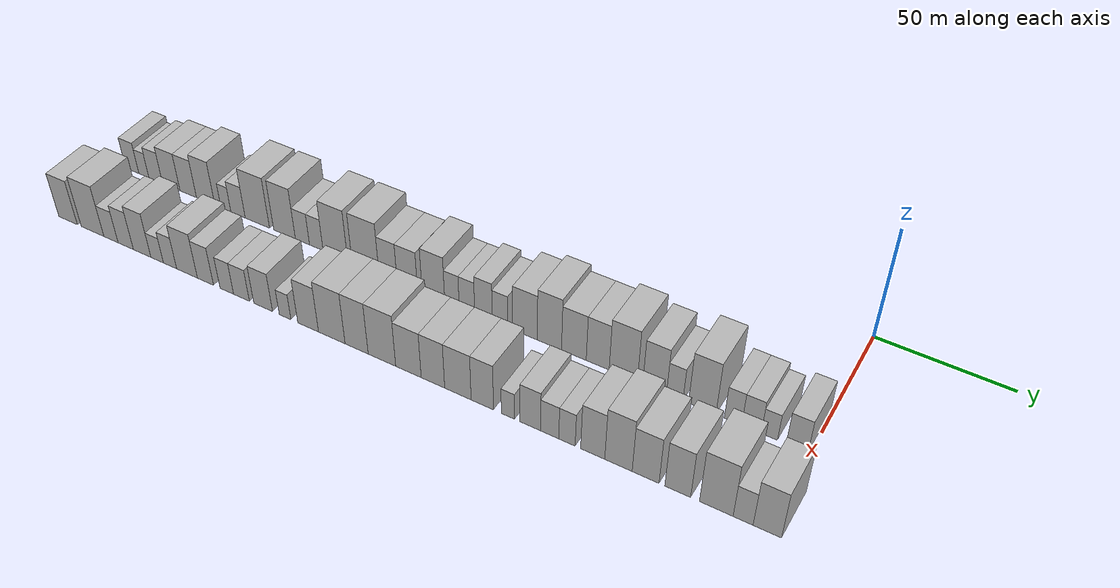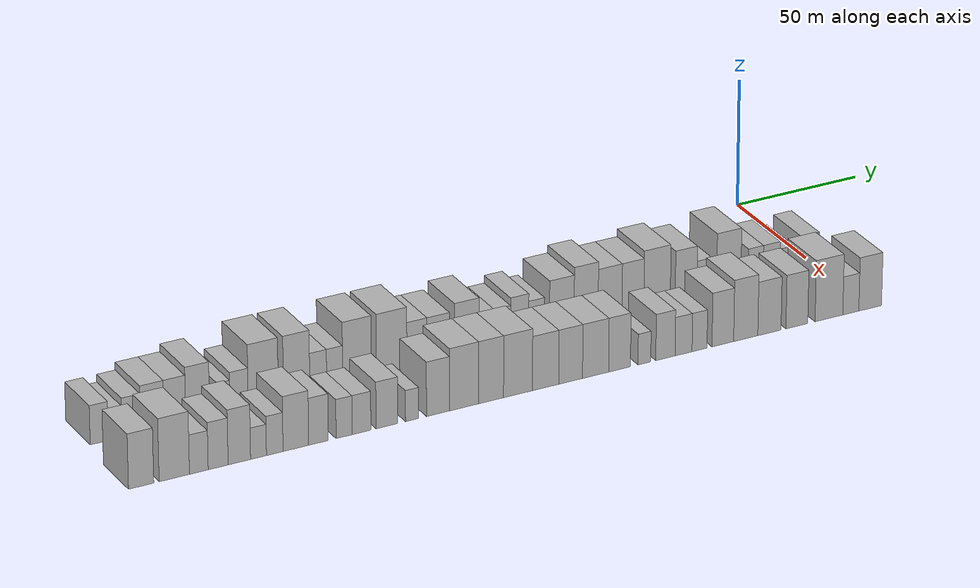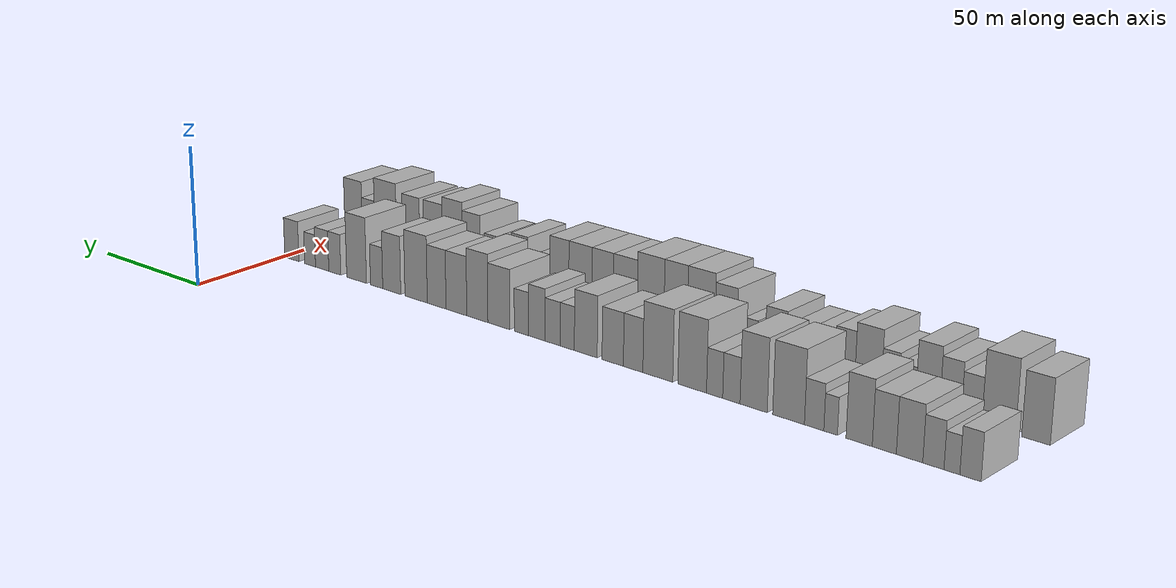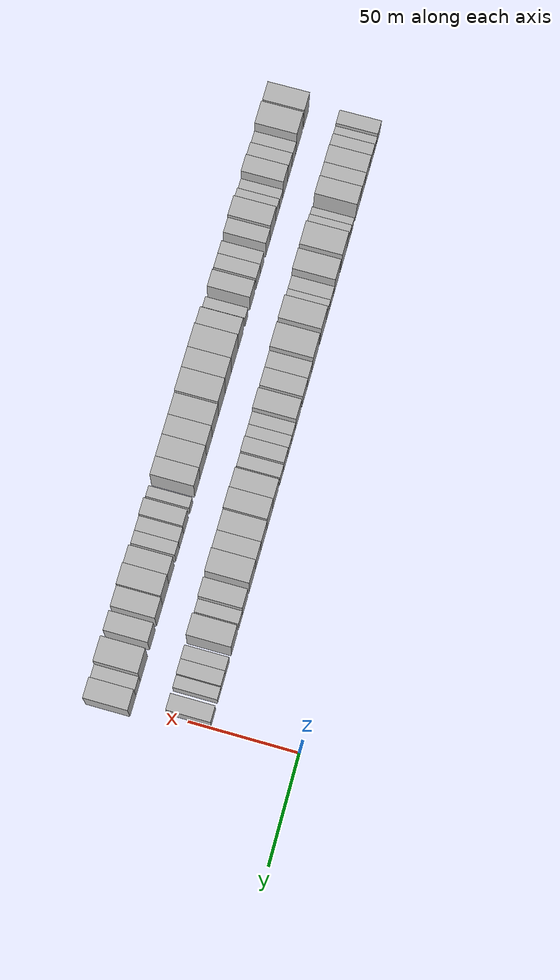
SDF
<sdf version="1.6">
 <world name="default">
  <model name="building_1">
   <static>1</static>
   <pose>50.0000 -284.5812 0 0.000000 0.000000 0.000000</pose>
   <link name="link">
    <pose>0 0 7.50 0 0 0</pose>
    <collision name="collision"><geometry><box><size>20.0000 6.8375 15.0000</size></box></geometry></collision>
    <visual name="visual">
     <cast_shadows>0</cast_shadows>
     <geometry><box><size>20.0000 6.8375 15.0000</size></box></geometry>
     <material>
      <script>
       <uri>model://HANNAS_wall/materials/scripts</uri>
       <uri>model://HANNAS_wall/materials/textures</uri>
       <name>vrc/HANNAS_wall</name>
      </script>
     </material>
    </visual>
   </link>
  </model>
  <model name="building_2">
   <static>1</static>
   <pose>50.0000 -278.5755 0 0.000000 0.000000 0.000000</pose>
   <link name="link">
    <pose>0 0 6.00 0 0 0</pose>
    <collision name="collision"><geometry><box><size>20.0000 5.1739 12.0000</size></box></geometry></collision>
    <visual name="visual">
     <cast_shadows>0</cast_shadows>
     <geometry><box><size>20.0000 5.1739 12.0000</size></box></geometry>
     <material>
      <script>
       <uri>model://HANNAS_wall/materials/scripts</uri>
       <uri>model://HANNAS_wall/materials/textures</uri>
       <name>vrc/HANNAS_wall</name>
      </script>
     </material>
    </visual>
   </link>
  </model>
  <model name="building_3">
   <static>1</static>
   <pose>50.0000 -272.4945 0 0.000000 0.000000 0.000000</pose>
   <link name="link">
    <pose>0 0 7.50 0 0 0</pose>
    <collision name="collision"><geometry><box><size>20.0000 6.9881 15.0000</size></box></geometry></collision>
    <visual name="visual">
     <cast_shadows>0</cast_shadows>
     <geometry><box><size>20.0000 6.9881 15.0000</size></box></geometry>
     <material>
      <script>
       <uri>model://HANNAS_wall/materials/scripts</uri>
       <uri>model://HANNAS_wall/materials/textures</uri>
       <name>vrc/HANNAS_wall</name>
      </script>
     </material>
    </visual>
   </link>
  </model>
  <model name="building_4">
   <static>1</static>
   <pose>50.0000 -264.5793 0 0.000000 0.000000 0.000000</pose>
   <link name="link">
    <pose>0 0 9.00 0 0 0</pose>
    <collision name="collision"><geometry><box><size>20.0000 8.8423 18.0000</size></box></geometry></collision>
    <visual name="visual">
     <cast_shadows>0</cast_shadows>
     <geometry><box><size>20.0000 8.8423 18.0000</size></box></geometry>
     <material>
      <script>
       <uri>model://HANNAS_wall/materials/scripts</uri>
       <uri>model://HANNAS_wall/materials/textures</uri>
       <name>vrc/HANNAS_wall</name>
      </script>
     </material>
    </visual>
   </link>
  </model>
  <model name="building_5">
   <static>1</static>
   <pose>50.0000 -256.0554 0 0.000000 0.000000 0.000000</pose>
   <link name="link">
    <pose>0 0 9.00 0 0 0</pose>
    <collision name="collision"><geometry><box><size>20.0000 8.2054 18.0000</size></box></geometry></collision>
    <visual name="visual">
     <cast_shadows>0</cast_shadows>
     <geometry><box><size>20.0000 8.2054 18.0000</size></box></geometry>
     <material>
      <script>
       <uri>model://HANNAS_wall/materials/scripts</uri>
       <uri>model://HANNAS_wall/materials/textures</uri>
       <name>vrc/HANNAS_wall</name>
      </script>
     </material>
    </visual>
   </link>
  </model>
  <model name="building_6">
   <static>1</static>
   <pose>50.0000 -247.4107 0 0.000000 0.000000 0.000000</pose>
   <link name="link">
    <pose>0 0 10.50 0 0 0</pose>
    <collision name="collision"><geometry><box><size>20.0000 9.0841 21.0000</size></box></geometry></collision>
    <visual name="visual">
     <cast_shadows>0</cast_shadows>
     <geometry><box><size>20.0000 9.0841 21.0000</size></box></geometry>
     <material>
      <script>
       <uri>model://HANNAS_wall/materials/scripts</uri>
       <uri>model://HANNAS_wall/materials/textures</uri>
       <name>vrc/HANNAS_wall</name>
      </script>
     </material>
    </visual>
   </link>
  </model>
  <model name="building_7">
   <static>1</static>
   <pose>50.0000 -237.4643 0 0.000000 0.000000 0.000000</pose>
   <link name="link">
    <pose>0 0 6.00 0 0 0</pose>
    <collision name="collision"><geometry><box><size>20.0000 4.8087 12.0000</size></box></geometry></collision>
    <visual name="visual">
     <cast_shadows>0</cast_shadows>
     <geometry><box><size>20.0000 4.8087 12.0000</size></box></geometry>
     <material>
      <script>
       <uri>model://HANNAS_wall/materials/scripts</uri>
       <uri>model://HANNAS_wall/materials/textures</uri>
       <name>vrc/HANNAS_wall</name>
      </script>
     </material>
    </visual>
   </link>
  </model>
  <model name="building_8">
   <static>1</static>
   <pose>50.0000 -231.5951 0 0.000000 0.000000 0.000000</pose>
   <link name="link">
    <pose>0 0 7.50 0 0 0</pose>
    <collision name="collision"><geometry><box><size>20.0000 6.9297 15.0000</size></box></geometry></collision>
    <visual name="visual">
     <cast_shadows>0</cast_shadows>
     <geometry><box><size>20.0000 6.9297 15.0000</size></box></geometry>
     <material>
      <script>
       <uri>model://HANNAS_wall/materials/scripts</uri>
       <uri>model://HANNAS_wall/materials/textures</uri>
       <name>vrc/HANNAS_wall</name>
      </script>
     </material>
    </visual>
   </link>
  </model>
  <model name="building_9">
   <static>1</static>
   <pose>50.0000 -222.3538 0 0.000000 0.000000 0.000000</pose>
   <link name="link">
    <pose>0 0 12.00 0 0 0</pose>
    <collision name="collision"><geometry><box><size>20.0000 11.5530 24.0000</size></box></geometry></collision>
    <visual name="visual">
     <cast_shadows>0</cast_shadows>
     <geometry><box><size>20.0000 11.5530 24.0000</size></box></geometry>
     <material>
      <script>
       <uri>model://HANNAS_wall/materials/scripts</uri>
       <uri>model://HANNAS_wall/materials/textures</uri>
       <name>vrc/HANNAS_wall</name>
      </script>
     </material>
    </visual>
   </link>
  </model>
  <model name="building_10">
   <static>1</static>
   <pose>50.0000 -209.5118 0 0.000000 0.000000 0.000000</pose>
   <link name="link">
    <pose>0 0 12.00 0 0 0</pose>
    <collision name="collision"><geometry><box><size>20.0000 10.1310 24.0000</size></box></geometry></collision>
    <visual name="visual">
     <cast_shadows>0</cast_shadows>
     <geometry><box><size>20.0000 10.1310 24.0000</size></box></geometry>
     <material>
      <script>
       <uri>model://HANNAS_wall/materials/scripts</uri>
       <uri>model://HANNAS_wall/materials/textures</uri>
       <name>vrc/HANNAS_wall</name>
      </script>
     </material>
    </visual>
   </link>
  </model>
  <model name="building_11">
   <static>1</static>
   <pose>50.0000 -201.1708 0 0.000000 0.000000 0.000000</pose>
   <link name="link">
    <pose>0 0 7.50 0 0 0</pose>
    <collision name="collision"><geometry><box><size>20.0000 6.5511 15.0000</size></box></geometry></collision>
    <visual name="visual">
     <cast_shadows>0</cast_shadows>
     <geometry><box><size>20.0000 6.5511 15.0000</size></box></geometry>
     <material>
      <script>
       <uri>model://HANNAS_wall/materials/scripts</uri>
       <uri>model://HANNAS_wall/materials/textures</uri>
       <name>vrc/HANNAS_wall</name>
      </script>
     </material>
    </visual>
   </link>
  </model>
  <model name="building_12">
   <static>1</static>
   <pose>50.0000 -194.7943 0 0.000000 0.000000 0.000000</pose>
   <link name="link">
    <pose>0 0 7.50 0 0 0</pose>
    <collision name="collision"><geometry><box><size>20.0000 6.2018 15.0000</size></box></geometry></collision>
    <visual name="visual">
     <cast_shadows>0</cast_shadows>
     <geometry><box><size>20.0000 6.2018 15.0000</size></box></geometry>
     <material>
      <script>
       <uri>model://HANNAS_wall/materials/scripts</uri>
       <uri>model://HANNAS_wall/materials/textures</uri>
       <name>vrc/HANNAS_wall</name>
      </script>
     </material>
    </visual>
   </link>
  </model>
  <model name="building_13">
   <static>1</static>
   <pose>50.0000 -186.1245 0 0.000000 0.000000 0.000000</pose>
   <link name="link">
    <pose>0 0 12.00 0 0 0</pose>
    <collision name="collision"><geometry><box><size>20.0000 11.1378 24.0000</size></box></geometry></collision>
    <visual name="visual">
     <cast_shadows>0</cast_shadows>
     <geometry><box><size>20.0000 11.1378 24.0000</size></box></geometry>
     <material>
      <script>
       <uri>model://HANNAS_wall/materials/scripts</uri>
       <uri>model://HANNAS_wall/materials/textures</uri>
       <name>vrc/HANNAS_wall</name>
      </script>
     </material>
    </visual>
   </link>
  </model>
  <model name="building_14">
   <static>1</static>
   <pose>50.0000 -172.6004 0 0.000000 0.000000 0.000000</pose>
   <link name="link">
    <pose>0 0 12.00 0 0 0</pose>
    <collision name="collision"><geometry><box><size>20.0000 11.9105 24.0000</size></box></geometry></collision>
    <visual name="visual">
     <cast_shadows>0</cast_shadows>
     <geometry><box><size>20.0000 11.9105 24.0000</size></box></geometry>
     <material>
      <script>
       <uri>model://HANNAS_wall/materials/scripts</uri>
       <uri>model://HANNAS_wall/materials/textures</uri>
       <name>vrc/HANNAS_wall</name>
      </script>
     </material>
    </visual>
   </link>
  </model>
  <model name="building_15">
   <static>1</static>
   <pose>50.0000 -162.6880 0 0.000000 0.000000 0.000000</pose>
   <link name="link">
    <pose>0 0 9.00 0 0 0</pose>
    <collision name="collision"><geometry><box><size>20.0000 7.9143 18.0000</size></box></geometry></collision>
    <visual name="visual">
     <cast_shadows>0</cast_shadows>
     <geometry><box><size>20.0000 7.9143 18.0000</size></box></geometry>
     <material>
      <script>
       <uri>model://HANNAS_wall/materials/scripts</uri>
       <uri>model://HANNAS_wall/materials/textures</uri>
       <name>vrc/HANNAS_wall</name>
      </script>
     </material>
    </visual>
   </link>
  </model>
  <model name="building_16">
   <static>1</static>
   <pose>50.0000 -154.3279 0 0.000000 0.000000 0.000000</pose>
   <link name="link">
    <pose>0 0 9.00 0 0 0</pose>
    <collision name="collision"><geometry><box><size>20.0000 8.8059 18.0000</size></box></geometry></collision>
    <visual name="visual">
     <cast_shadows>0</cast_shadows>
     <geometry><box><size>20.0000 8.8059 18.0000</size></box></geometry>
     <material>
      <script>
       <uri>model://HANNAS_wall/materials/scripts</uri>
       <uri>model://HANNAS_wall/materials/textures</uri>
       <name>vrc/HANNAS_wall</name>
      </script>
     </material>
    </visual>
   </link>
  </model>
  <model name="building_17">
   <static>1</static>
   <pose>50.0000 -143.1177 0 0.000000 0.000000 0.000000</pose>
   <link name="link">
    <pose>0 0 10.50 0 0 0</pose>
    <collision name="collision"><geometry><box><size>20.0000 9.6144 21.0000</size></box></geometry></collision>
    <visual name="visual">
     <cast_shadows>0</cast_shadows>
     <geometry><box><size>20.0000 9.6144 21.0000</size></box></geometry>
     <material>
      <script>
       <uri>model://HANNAS_wall/materials/scripts</uri>
       <uri>model://HANNAS_wall/materials/textures</uri>
       <name>vrc/HANNAS_wall</name>
      </script>
     </material>
    </visual>
   </link>
  </model>
  <model name="building_18">
   <static>1</static>
   <pose>50.0000 -135.2743 0 0.000000 0.000000 0.000000</pose>
   <link name="link">
    <pose>0 0 7.50 0 0 0</pose>
    <collision name="collision"><geometry><box><size>20.0000 6.0724 15.0000</size></box></geometry></collision>
    <visual name="visual">
     <cast_shadows>0</cast_shadows>
     <geometry><box><size>20.0000 6.0724 15.0000</size></box></geometry>
     <material>
      <script>
       <uri>model://HANNAS_wall/materials/scripts</uri>
       <uri>model://HANNAS_wall/materials/textures</uri>
       <name>vrc/HANNAS_wall</name>
      </script>
     </material>
    </visual>
   </link>
  </model>
  <model name="building_19">
   <static>1</static>
   <pose>50.0000 -129.0100 0 0.000000 0.000000 0.000000</pose>
   <link name="link">
    <pose>0 0 7.50 0 0 0</pose>
    <collision name="collision"><geometry><box><size>20.0000 6.4562 15.0000</size></box></geometry></collision>
    <visual name="visual">
     <cast_shadows>0</cast_shadows>
     <geometry><box><size>20.0000 6.4562 15.0000</size></box></geometry>
     <material>
      <script>
       <uri>model://HANNAS_wall/materials/scripts</uri>
       <uri>model://HANNAS_wall/materials/textures</uri>
       <name>vrc/HANNAS_wall</name>
      </script>
     </material>
    </visual>
   </link>
  </model>
  <model name="building_20">
   <static>1</static>
   <pose>50.0000 -122.1704 0 0.000000 0.000000 0.000000</pose>
   <link name="link">
    <pose>0 0 9.00 0 0 0</pose>
    <collision name="collision"><geometry><box><size>20.0000 7.2230 18.0000</size></box></geometry></collision>
    <visual name="visual">
     <cast_shadows>0</cast_shadows>
     <geometry><box><size>20.0000 7.2230 18.0000</size></box></geometry>
     <material>
      <script>
       <uri>model://HANNAS_wall/materials/scripts</uri>
       <uri>model://HANNAS_wall/materials/textures</uri>
       <name>vrc/HANNAS_wall</name>
      </script>
     </material>
    </visual>
   </link>
  </model>
  <model name="building_21">
   <static>1</static>
   <pose>50.0000 -115.4104 0 0.000000 0.000000 0.000000</pose>
   <link name="link">
    <pose>0 0 7.50 0 0 0</pose>
    <collision name="collision"><geometry><box><size>20.0000 6.2971 15.0000</size></box></geometry></collision>
    <visual name="visual">
     <cast_shadows>0</cast_shadows>
     <geometry><box><size>20.0000 6.2971 15.0000</size></box></geometry>
     <material>
      <script>
       <uri>model://HANNAS_wall/materials/scripts</uri>
       <uri>model://HANNAS_wall/materials/textures</uri>
       <name>vrc/HANNAS_wall</name>
      </script>
     </material>
    </visual>
   </link>
  </model>
  <model name="building_22">
   <static>1</static>
   <pose>50.0000 -105.3460 0 0.000000 0.000000 0.000000</pose>
   <link name="link">
    <pose>0 0 10.50 0 0 0</pose>
    <collision name="collision"><geometry><box><size>20.0000 9.8316 21.0000</size></box></geometry></collision>
    <visual name="visual">
     <cast_shadows>0</cast_shadows>
     <geometry><box><size>20.0000 9.8316 21.0000</size></box></geometry>
     <material>
      <script>
       <uri>model://HANNAS_wall/materials/scripts</uri>
       <uri>model://HANNAS_wall/materials/textures</uri>
       <name>vrc/HANNAS_wall</name>
      </script>
     </material>
    </visual>
   </link>
  </model>
  <model name="building_23">
   <static>1</static>
   <pose>50.0000 -95.6116 0 0.000000 0.000000 0.000000</pose>
   <link name="link">
    <pose>0 0 12.00 0 0 0</pose>
    <collision name="collision"><geometry><box><size>20.0000 9.6372 24.0000</size></box></geometry></collision>
    <visual name="visual">
     <cast_shadows>0</cast_shadows>
     <geometry><box><size>20.0000 9.6372 24.0000</size></box></geometry>
     <material>
      <script>
       <uri>model://HANNAS_wall/materials/scripts</uri>
       <uri>model://HANNAS_wall/materials/textures</uri>
       <name>vrc/HANNAS_wall</name>
      </script>
     </material>
    </visual>
   </link>
  </model>
  <model name="building_24">
   <static>1</static>
   <pose>50.0000 -85.9801 0 0.000000 0.000000 0.000000</pose>
   <link name="link">
    <pose>0 0 10.50 0 0 0</pose>
    <collision name="collision"><geometry><box><size>20.0000 9.6257 21.0000</size></box></geometry></collision>
    <visual name="visual">
     <cast_shadows>0</cast_shadows>
     <geometry><box><size>20.0000 9.6257 21.0000</size></box></geometry>
     <material>
      <script>
       <uri>model://HANNAS_wall/materials/scripts</uri>
       <uri>model://HANNAS_wall/materials/textures</uri>
       <name>vrc/HANNAS_wall</name>
      </script>
     </material>
    </visual>
   </link>
  </model>
  <model name="building_25">
   <static>1</static>
   <pose>50.0000 -76.7564 0 0.000000 0.000000 0.000000</pose>
   <link name="link">
    <pose>0 0 10.50 0 0 0</pose>
    <collision name="collision"><geometry><box><size>20.0000 8.8217 21.0000</size></box></geometry></collision>
    <visual name="visual">
     <cast_shadows>0</cast_shadows>
     <geometry><box><size>20.0000 8.8217 21.0000</size></box></geometry>
     <material>
      <script>
       <uri>model://HANNAS_wall/materials/scripts</uri>
       <uri>model://HANNAS_wall/materials/textures</uri>
       <name>vrc/HANNAS_wall</name>
      </script>
     </material>
    </visual>
   </link>
  </model>
  <model name="building_26">
   <static>1</static>
   <pose>50.0000 -66.9950 0 0.000000 0.000000 0.000000</pose>
   <link name="link">
    <pose>0 0 12.00 0 0 0</pose>
    <collision name="collision"><geometry><box><size>20.0000 10.7010 24.0000</size></box></geometry></collision>
    <visual name="visual">
     <cast_shadows>0</cast_shadows>
     <geometry><box><size>20.0000 10.7010 24.0000</size></box></geometry>
     <material>
      <script>
       <uri>model://HANNAS_wall/materials/scripts</uri>
       <uri>model://HANNAS_wall/materials/textures</uri>
       <name>vrc/HANNAS_wall</name>
      </script>
     </material>
    </visual>
   </link>
  </model>
  <model name="building_27">
   <static>1</static>
   <pose>50.0000 -55.2342 0 0.000000 0.000000 0.000000</pose>
   <link name="link">
    <pose>0 0 10.50 0 0 0</pose>
    <collision name="collision"><geometry><box><size>20.0000 8.8207 21.0000</size></box></geometry></collision>
    <visual name="visual">
     <cast_shadows>0</cast_shadows>
     <geometry><box><size>20.0000 8.8207 21.0000</size></box></geometry>
     <material>
      <script>
       <uri>model://HANNAS_wall/materials/scripts</uri>
       <uri>model://HANNAS_wall/materials/textures</uri>
       <name>vrc/HANNAS_wall</name>
      </script>
     </material>
    </visual>
   </link>
  </model>
  <model name="building_28">
   <static>1</static>
   <pose>50.0000 -47.8002 0 0.000000 0.000000 0.000000</pose>
   <link name="link">
    <pose>0 0 7.50 0 0 0</pose>
    <collision name="collision"><geometry><box><size>20.0000 6.0472 15.0000</size></box></geometry></collision>
    <visual name="visual">
     <cast_shadows>0</cast_shadows>
     <geometry><box><size>20.0000 6.0472 15.0000</size></box></geometry>
     <material>
      <script>
       <uri>model://HANNAS_wall/materials/scripts</uri>
       <uri>model://HANNAS_wall/materials/textures</uri>
       <name>vrc/HANNAS_wall</name>
      </script>
     </material>
    </visual>
   </link>
  </model>
  <model name="building_29">
   <static>1</static>
   <pose>50.0000 -37.8231 0 0.000000 0.000000 0.000000</pose>
   <link name="link">
    <pose>0 0 12.00 0 0 0</pose>
    <collision name="collision"><geometry><box><size>20.0000 9.9070 24.0000</size></box></geometry></collision>
    <visual name="visual">
     <cast_shadows>0</cast_shadows>
     <geometry><box><size>20.0000 9.9070 24.0000</size></box></geometry>
     <material>
      <script>
       <uri>model://HANNAS_wall/materials/scripts</uri>
       <uri>model://HANNAS_wall/materials/textures</uri>
       <name>vrc/HANNAS_wall</name>
      </script>
     </material>
    </visual>
   </link>
  </model>
  <model name="building_30">
   <static>1</static>
   <pose>50.0000 -26.7958 0 0.000000 0.000000 0.000000</pose>
   <link name="link">
    <pose>0 0 7.50 0 0 0</pose>
    <collision name="collision"><geometry><box><size>20.0000 6.1476 15.0000</size></box></geometry></collision>
    <visual name="visual">
     <cast_shadows>0</cast_shadows>
     <geometry><box><size>20.0000 6.1476 15.0000</size></box></geometry>
     <material>
      <script>
       <uri>model://HANNAS_wall/materials/scripts</uri>
       <uri>model://HANNAS_wall/materials/textures</uri>
       <name>vrc/HANNAS_wall</name>
      </script>
     </material>
    </visual>
   </link>
  </model>
  <model name="building_31">
   <static>1</static>
   <pose>50.0000 -20.2900 0 0.000000 0.000000 0.000000</pose>
   <link name="link">
    <pose>0 0 7.50 0 0 0</pose>
    <collision name="collision"><geometry><box><size>20.0000 6.8641 15.0000</size></box></geometry></collision>
    <visual name="visual">
     <cast_shadows>0</cast_shadows>
     <geometry><box><size>20.0000 6.8641 15.0000</size></box></geometry>
     <material>
      <script>
       <uri>model://HANNAS_wall/materials/scripts</uri>
       <uri>model://HANNAS_wall/materials/textures</uri>
       <name>vrc/HANNAS_wall</name>
      </script>
     </material>
    </visual>
   </link>
  </model>
  <model name="building_32">
   <static>1</static>
   <pose>50.0000 -14.0170 0 0.000000 0.000000 0.000000</pose>
   <link name="link">
    <pose>0 0 6.00 0 0 0</pose>
    <collision name="collision"><geometry><box><size>20.0000 5.6818 12.0000</size></box></geometry></collision>
    <visual name="visual">
     <cast_shadows>0</cast_shadows>
     <geometry><box><size>20.0000 5.6818 12.0000</size></box></geometry>
     <material>
      <script>
       <uri>model://HANNAS_wall/materials/scripts</uri>
       <uri>model://HANNAS_wall/materials/textures</uri>
       <name>vrc/HANNAS_wall</name>
      </script>
     </material>
    </visual>
   </link>
  </model>
  <model name="building_33">
   <static>1</static>
   <pose>50.0000 -4.4500 0 0.000000 0.000000 0.000000</pose>
   <link name="link">
    <pose>0 0 7.50 0 0 0</pose>
    <collision name="collision"><geometry><box><size>20.0000 7.4523 15.0000</size></box></geometry></collision>
    <visual name="visual">
     <cast_shadows>0</cast_shadows>
     <geometry><box><size>20.0000 7.4523 15.0000</size></box></geometry>
     <material>
      <script>
       <uri>model://HANNAS_wall/materials/scripts</uri>
       <uri>model://HANNAS_wall/materials/textures</uri>
       <name>vrc/HANNAS_wall</name>
      </script>
     </material>
    </visual>
   </link>
  </model>
  <model name="building_67">
   <static>1</static>
   <pose>85.0000 -285.3031 0 0.000000 0.000000 0.000000</pose>
   <link name="link">
    <pose>0 0 10.50 0 0 0</pose>
    <collision name="collision"><geometry><box><size>20.0000 9.3939 21.0000</size></box></geometry></collision>
    <visual name="visual">
     <cast_shadows>0</cast_shadows>
     <geometry><box><size>20.0000 9.3939 21.0000</size></box></geometry>
     <material>
      <script>
       <uri>model://HANNAS_wall/materials/scripts</uri>
       <uri>model://HANNAS_wall/materials/textures</uri>
       <name>vrc/HANNAS_wall</name>
      </script>
     </material>
    </visual>
   </link>
  </model>
  <model name="building_68">
   <static>1</static>
   <pose>85.0000 -272.9436 0 0.000000 0.000000 0.000000</pose>
   <link name="link">
    <pose>0 0 12.00 0 0 0</pose>
    <collision name="collision"><geometry><box><size>20.0000 11.3250 24.0000</size></box></geometry></collision>
    <visual name="visual">
     <cast_shadows>0</cast_shadows>
     <geometry><box><size>20.0000 11.3250 24.0000</size></box></geometry>
     <material>
      <script>
       <uri>model://HANNAS_wall/materials/scripts</uri>
       <uri>model://HANNAS_wall/materials/textures</uri>
       <name>vrc/HANNAS_wall</name>
      </script>
     </material>
    </visual>
   </link>
  </model>
  <model name="building_69">
   <static>1</static>
   <pose>85.0000 -263.7692 0 0.000000 0.000000 0.000000</pose>
   <link name="link">
    <pose>0 0 7.50 0 0 0</pose>
    <collision name="collision"><geometry><box><size>20.0000 7.0239 15.0000</size></box></geometry></collision>
    <visual name="visual">
     <cast_shadows>0</cast_shadows>
     <geometry><box><size>20.0000 7.0239 15.0000</size></box></geometry>
     <material>
      <script>
       <uri>model://HANNAS_wall/materials/scripts</uri>
       <uri>model://HANNAS_wall/materials/textures</uri>
       <name>vrc/HANNAS_wall</name>
      </script>
     </material>
    </visual>
   </link>
  </model>
  <model name="building_70">
   <static>1</static>
   <pose>85.0000 -256.5180 0 0.000000 0.000000 0.000000</pose>
   <link name="link">
    <pose>0 0 9.00 0 0 0</pose>
    <collision name="collision"><geometry><box><size>20.0000 7.4785 18.0000</size></box></geometry></collision>
    <visual name="visual">
     <cast_shadows>0</cast_shadows>
     <geometry><box><size>20.0000 7.4785 18.0000</size></box></geometry>
     <material>
      <script>
       <uri>model://HANNAS_wall/materials/scripts</uri>
       <uri>model://HANNAS_wall/materials/textures</uri>
       <name>vrc/HANNAS_wall</name>
      </script>
     </material>
    </visual>
   </link>
  </model>
  <model name="building_71">
   <static>1</static>
   <pose>85.0000 -248.5398 0 0.000000 0.000000 0.000000</pose>
   <link name="link">
    <pose>0 0 10.50 0 0 0</pose>
    <collision name="collision"><geometry><box><size>20.0000 8.4778 21.0000</size></box></geometry></collision>
    <visual name="visual">
     <cast_shadows>0</cast_shadows>
     <geometry><box><size>20.0000 8.4778 21.0000</size></box></geometry>
     <material>
      <script>
       <uri>model://HANNAS_wall/materials/scripts</uri>
       <uri>model://HANNAS_wall/materials/textures</uri>
       <name>vrc/HANNAS_wall</name>
      </script>
     </material>
    </visual>
   </link>
  </model>
  <model name="building_72">
   <static>1</static>
   <pose>85.0000 -241.3082 0 0.000000 0.000000 0.000000</pose>
   <link name="link">
    <pose>0 0 6.00 0 0 0</pose>
    <collision name="collision"><geometry><box><size>20.0000 5.9854 12.0000</size></box></geometry></collision>
    <visual name="visual">
     <cast_shadows>0</cast_shadows>
     <geometry><box><size>20.0000 5.9854 12.0000</size></box></geometry>
     <material>
      <script>
       <uri>model://HANNAS_wall/materials/scripts</uri>
       <uri>model://HANNAS_wall/materials/textures</uri>
       <name>vrc/HANNAS_wall</name>
      </script>
     </material>
    </visual>
   </link>
  </model>
  <model name="building_73">
   <static>1</static>
   <pose>85.0000 -235.1701 0 0.000000 0.000000 0.000000</pose>
   <link name="link">
    <pose>0 0 7.50 0 0 0</pose>
    <collision name="collision"><geometry><box><size>20.0000 6.2908 15.0000</size></box></geometry></collision>
    <visual name="visual">
     <cast_shadows>0</cast_shadows>
     <geometry><box><size>20.0000 6.2908 15.0000</size></box></geometry>
     <material>
      <script>
       <uri>model://HANNAS_wall/materials/scripts</uri>
       <uri>model://HANNAS_wall/materials/textures</uri>
       <name>vrc/HANNAS_wall</name>
      </script>
     </material>
    </visual>
   </link>
  </model>
  <model name="building_74">
   <static>1</static>
   <pose>85.0000 -227.1568 0 0.000000 0.000000 0.000000</pose>
   <link name="link">
    <pose>0 0 10.50 0 0 0</pose>
    <collision name="collision"><geometry><box><size>20.0000 9.7358 21.0000</size></box></geometry></collision>
    <visual name="visual">
     <cast_shadows>0</cast_shadows>
     <geometry><box><size>20.0000 9.7358 21.0000</size></box></geometry>
     <material>
      <script>
       <uri>model://HANNAS_wall/materials/scripts</uri>
       <uri>model://HANNAS_wall/materials/textures</uri>
       <name>vrc/HANNAS_wall</name>
      </script>
     </material>
    </visual>
   </link>
  </model>
  <model name="building_75">
   <static>1</static>
   <pose>85.0000 -218.5560 0 0.000000 0.000000 0.000000</pose>
   <link name="link">
    <pose>0 0 9.00 0 0 0</pose>
    <collision name="collision"><geometry><box><size>20.0000 7.4657 18.0000</size></box></geometry></collision>
    <visual name="visual">
     <cast_shadows>0</cast_shadows>
     <geometry><box><size>20.0000 7.4657 18.0000</size></box></geometry>
     <material>
      <script>
       <uri>model://HANNAS_wall/materials/scripts</uri>
       <uri>model://HANNAS_wall/materials/textures</uri>
       <name>vrc/HANNAS_wall</name>
      </script>
     </material>
    </visual>
   </link>
  </model>
  <model name="building_76">
   <static>1</static>
   <pose>85.0000 -208.7302 0 0.000000 0.000000 0.000000</pose>
   <link name="link">
    <pose>0 0 7.50 0 0 0</pose>
    <collision name="collision"><geometry><box><size>20.0000 6.1860 15.0000</size></box></geometry></collision>
    <visual name="visual">
     <cast_shadows>0</cast_shadows>
     <geometry><box><size>20.0000 6.1860 15.0000</size></box></geometry>
     <material>
      <script>
       <uri>model://HANNAS_wall/materials/scripts</uri>
       <uri>model://HANNAS_wall/materials/textures</uri>
       <name>vrc/HANNAS_wall</name>
      </script>
     </material>
    </visual>
   </link>
  </model>
  <model name="building_77">
   <static>1</static>
   <pose>85.0000 -202.0763 0 0.000000 0.000000 0.000000</pose>
   <link name="link">
    <pose>0 0 7.50 0 0 0</pose>
    <collision name="collision"><geometry><box><size>20.0000 7.1218 15.0000</size></box></geometry></collision>
    <visual name="visual">
     <cast_shadows>0</cast_shadows>
     <geometry><box><size>20.0000 7.1218 15.0000</size></box></geometry>
     <material>
      <script>
       <uri>model://HANNAS_wall/materials/scripts</uri>
       <uri>model://HANNAS_wall/materials/textures</uri>
       <name>vrc/HANNAS_wall</name>
      </script>
     </material>
    </visual>
   </link>
  </model>
  <model name="building_78">
   <static>1</static>
   <pose>85.0000 -192.3499 0 0.000000 0.000000 0.000000</pose>
   <link name="link">
    <pose>0 0 9.00 0 0 0</pose>
    <collision name="collision"><geometry><box><size>20.0000 8.3311 18.0000</size></box></geometry></collision>
    <visual name="visual">
     <cast_shadows>0</cast_shadows>
     <geometry><box><size>20.0000 8.3311 18.0000</size></box></geometry>
     <material>
      <script>
       <uri>model://HANNAS_wall/materials/scripts</uri>
       <uri>model://HANNAS_wall/materials/textures</uri>
       <name>vrc/HANNAS_wall</name>
      </script>
     </material>
    </visual>
   </link>
  </model>
  <model name="building_79">
   <static>1</static>
   <pose>85.0000 -182.6326 0 0.000000 0.000000 0.000000</pose>
   <link name="link">
    <pose>0 0 6.00 0 0 0</pose>
    <collision name="collision"><geometry><box><size>20.0000 5.1035 12.0000</size></box></geometry></collision>
    <visual name="visual">
     <cast_shadows>0</cast_shadows>
     <geometry><box><size>20.0000 5.1035 12.0000</size></box></geometry>
     <material>
      <script>
       <uri>model://HANNAS_wall/materials/scripts</uri>
       <uri>model://HANNAS_wall/materials/textures</uri>
       <name>vrc/HANNAS_wall</name>
      </script>
     </material>
    </visual>
   </link>
  </model>
  <model name="building_80">
   <static>1</static>
   <pose>85.0000 -172.6034 0 0.000000 0.000000 0.000000</pose>
   <link name="link">
    <pose>0 0 10.50 0 0 0</pose>
    <collision name="collision"><geometry><box><size>20.0000 8.9549 21.0000</size></box></geometry></collision>
    <visual name="visual">
     <cast_shadows>0</cast_shadows>
     <geometry><box><size>20.0000 8.9549 21.0000</size></box></geometry>
     <material>
      <script>
       <uri>model://HANNAS_wall/materials/scripts</uri>
       <uri>model://HANNAS_wall/materials/textures</uri>
       <name>vrc/HANNAS_wall</name>
      </script>
     </material>
    </visual>
   </link>
  </model>
  <model name="building_81">
   <static>1</static>
   <pose>85.0000 -162.4686 0 0.000000 0.000000 0.000000</pose>
   <link name="link">
    <pose>0 0 12.00 0 0 0</pose>
    <collision name="collision"><geometry><box><size>20.0000 11.3146 24.0000</size></box></geometry></collision>
    <visual name="visual">
     <cast_shadows>0</cast_shadows>
     <geometry><box><size>20.0000 11.3146 24.0000</size></box></geometry>
     <material>
      <script>
       <uri>model://HANNAS_wall/materials/scripts</uri>
       <uri>model://HANNAS_wall/materials/textures</uri>
       <name>vrc/HANNAS_wall</name>
      </script>
     </material>
    </visual>
   </link>
  </model>
  <model name="building_82">
   <static>1</static>
   <pose>85.0000 -151.9671 0 0.000000 0.000000 0.000000</pose>
   <link name="link">
    <pose>0 0 12.00 0 0 0</pose>
    <collision name="collision"><geometry><box><size>20.0000 9.6883 24.0000</size></box></geometry></collision>
    <visual name="visual">
     <cast_shadows>0</cast_shadows>
     <geometry><box><size>20.0000 9.6883 24.0000</size></box></geometry>
     <material>
      <script>
       <uri>model://HANNAS_wall/materials/scripts</uri>
       <uri>model://HANNAS_wall/materials/textures</uri>
       <name>vrc/HANNAS_wall</name>
      </script>
     </material>
    </visual>
   </link>
  </model>
  <model name="building_83">
   <static>1</static>
   <pose>85.0000 -141.4526 0 0.000000 0.000000 0.000000</pose>
   <link name="link">
    <pose>0 0 12.00 0 0 0</pose>
    <collision name="collision"><geometry><box><size>20.0000 11.3408 24.0000</size></box></geometry></collision>
    <visual name="visual">
     <cast_shadows>0</cast_shadows>
     <geometry><box><size>20.0000 11.3408 24.0000</size></box></geometry>
     <material>
      <script>
       <uri>model://HANNAS_wall/materials/scripts</uri>
       <uri>model://HANNAS_wall/materials/textures</uri>
       <name>vrc/HANNAS_wall</name>
      </script>
     </material>
    </visual>
   </link>
  </model>
  <model name="building_84">
   <static>1</static>
   <pose>85.0000 -130.6121 0 0.000000 0.000000 0.000000</pose>
   <link name="link">
    <pose>0 0 10.50 0 0 0</pose>
    <collision name="collision"><geometry><box><size>20.0000 10.3402 21.0000</size></box></geometry></collision>
    <visual name="visual">
     <cast_shadows>0</cast_shadows>
     <geometry><box><size>20.0000 10.3402 21.0000</size></box></geometry>
     <material>
      <script>
       <uri>model://HANNAS_wall/materials/scripts</uri>
       <uri>model://HANNAS_wall/materials/textures</uri>
       <name>vrc/HANNAS_wall</name>
      </script>
     </material>
    </visual>
   </link>
  </model>
  <model name="building_85">
   <static>1</static>
   <pose>85.0000 -120.7578 0 0.000000 0.000000 0.000000</pose>
   <link name="link">
    <pose>0 0 10.50 0 0 0</pose>
    <collision name="collision"><geometry><box><size>20.0000 9.3684 21.0000</size></box></geometry></collision>
    <visual name="visual">
     <cast_shadows>0</cast_shadows>
     <geometry><box><size>20.0000 9.3684 21.0000</size></box></geometry>
     <material>
      <script>
       <uri>model://HANNAS_wall/materials/scripts</uri>
       <uri>model://HANNAS_wall/materials/textures</uri>
       <name>vrc/HANNAS_wall</name>
      </script>
     </material>
    </visual>
   </link>
  </model>
  <model name="building_86">
   <static>1</static>
   <pose>85.0000 -110.8813 0 0.000000 0.000000 0.000000</pose>
   <link name="link">
    <pose>0 0 10.50 0 0 0</pose>
    <collision name="collision"><geometry><box><size>20.0000 10.3844 21.0000</size></box></geometry></collision>
    <visual name="visual">
     <cast_shadows>0</cast_shadows>
     <geometry><box><size>20.0000 10.3844 21.0000</size></box></geometry>
     <material>
      <script>
       <uri>model://HANNAS_wall/materials/scripts</uri>
       <uri>model://HANNAS_wall/materials/textures</uri>
       <name>vrc/HANNAS_wall</name>
      </script>
     </material>
    </visual>
   </link>
  </model>
  <model name="building_87">
   <static>1</static>
   <pose>85.0000 -101.3699 0 0.000000 0.000000 0.000000</pose>
   <link name="link">
    <pose>0 0 10.50 0 0 0</pose>
    <collision name="collision"><geometry><box><size>20.0000 8.6384 21.0000</size></box></geometry></collision>
    <visual name="visual">
     <cast_shadows>0</cast_shadows>
     <geometry><box><size>20.0000 8.6384 21.0000</size></box></geometry>
     <material>
      <script>
       <uri>model://HANNAS_wall/materials/scripts</uri>
       <uri>model://HANNAS_wall/materials/textures</uri>
       <name>vrc/HANNAS_wall</name>
      </script>
     </material>
    </visual>
   </link>
  </model>
  <model name="building_88">
   <static>1</static>
   <pose>85.0000 -91.5108 0 0.000000 0.000000 0.000000</pose>
   <link name="link">
    <pose>0 0 6.00 0 0 0</pose>
    <collision name="collision"><geometry><box><size>20.0000 5.0799 12.0000</size></box></geometry></collision>
    <visual name="visual">
     <cast_shadows>0</cast_shadows>
     <geometry><box><size>20.0000 5.0799 12.0000</size></box></geometry>
     <material>
      <script>
       <uri>model://HANNAS_wall/materials/scripts</uri>
       <uri>model://HANNAS_wall/materials/textures</uri>
       <name>vrc/HANNAS_wall</name>
      </script>
     </material>
    </visual>
   </link>
  </model>
  <model name="building_89">
   <static>1</static>
   <pose>85.0000 -83.1074 0 0.000000 0.000000 0.000000</pose>
   <link name="link">
    <pose>0 0 9.00 0 0 0</pose>
    <collision name="collision"><geometry><box><size>20.0000 7.7269 18.0000</size></box></geometry></collision>
    <visual name="visual">
     <cast_shadows>0</cast_shadows>
     <geometry><box><size>20.0000 7.7269 18.0000</size></box></geometry>
     <material>
      <script>
       <uri>model://HANNAS_wall/materials/scripts</uri>
       <uri>model://HANNAS_wall/materials/textures</uri>
       <name>vrc/HANNAS_wall</name>
      </script>
     </material>
    </visual>
   </link>
  </model>
  <model name="building_90">
   <static>1</static>
   <pose>85.0000 -75.8558 0 0.000000 0.000000 0.000000</pose>
   <link name="link">
    <pose>0 0 7.50 0 0 0</pose>
    <collision name="collision"><geometry><box><size>20.0000 6.7762 15.0000</size></box></geometry></collision>
    <visual name="visual">
     <cast_shadows>0</cast_shadows>
     <geometry><box><size>20.0000 6.7762 15.0000</size></box></geometry>
     <material>
      <script>
       <uri>model://HANNAS_wall/materials/scripts</uri>
       <uri>model://HANNAS_wall/materials/textures</uri>
       <name>vrc/HANNAS_wall</name>
      </script>
     </material>
    </visual>
   </link>
  </model>
  <model name="building_91">
   <static>1</static>
   <pose>85.0000 -69.4529 0 0.000000 0.000000 0.000000</pose>
   <link name="link">
    <pose>0 0 7.50 0 0 0</pose>
    <collision name="collision"><geometry><box><size>20.0000 6.0297 15.0000</size></box></geometry></collision>
    <visual name="visual">
     <cast_shadows>0</cast_shadows>
     <geometry><box><size>20.0000 6.0297 15.0000</size></box></geometry>
     <material>
      <script>
       <uri>model://HANNAS_wall/materials/scripts</uri>
       <uri>model://HANNAS_wall/materials/textures</uri>
       <name>vrc/HANNAS_wall</name>
      </script>
     </material>
    </visual>
   </link>
  </model>
  <model name="building_92">
   <static>1</static>
   <pose>85.0000 -60.0726 0 0.000000 0.000000 0.000000</pose>
   <link name="link">
    <pose>0 0 10.50 0 0 0</pose>
    <collision name="collision"><geometry><box><size>20.0000 8.7310 21.0000</size></box></geometry></collision>
    <visual name="visual">
     <cast_shadows>0</cast_shadows>
     <geometry><box><size>20.0000 8.7310 21.0000</size></box></geometry>
     <material>
      <script>
       <uri>model://HANNAS_wall/materials/scripts</uri>
       <uri>model://HANNAS_wall/materials/textures</uri>
       <name>vrc/HANNAS_wall</name>
      </script>
     </material>
    </visual>
   </link>
  </model>
  <model name="building_93">
   <static>1</static>
   <pose>85.0000 -50.8202 0 0.000000 0.000000 0.000000</pose>
   <link name="link">
    <pose>0 0 12.00 0 0 0</pose>
    <collision name="collision"><geometry><box><size>20.0000 9.7738 24.0000</size></box></geometry></collision>
    <visual name="visual">
     <cast_shadows>0</cast_shadows>
     <geometry><box><size>20.0000 9.7738 24.0000</size></box></geometry>
     <material>
      <script>
       <uri>model://HANNAS_wall/materials/scripts</uri>
       <uri>model://HANNAS_wall/materials/textures</uri>
       <name>vrc/HANNAS_wall</name>
      </script>
     </material>
    </visual>
   </link>
  </model>
  <model name="building_94">
   <static>1</static>
   <pose>85.0000 -41.2248 0 0.000000 0.000000 0.000000</pose>
   <link name="link">
    <pose>0 0 10.50 0 0 0</pose>
    <collision name="collision"><geometry><box><size>20.0000 9.4169 21.0000</size></box></geometry></collision>
    <visual name="visual">
     <cast_shadows>0</cast_shadows>
     <geometry><box><size>20.0000 9.4169 21.0000</size></box></geometry>
     <material>
      <script>
       <uri>model://HANNAS_wall/materials/scripts</uri>
       <uri>model://HANNAS_wall/materials/textures</uri>
       <name>vrc/HANNAS_wall</name>
      </script>
     </material>
    </visual>
   </link>
  </model>
  <model name="building_95">
   <static>1</static>
   <pose>85.0000 -30.0740 0 0.000000 0.000000 0.000000</pose>
   <link name="link">
    <pose>0 0 10.50 0 0 0</pose>
    <collision name="collision"><geometry><box><size>20.0000 8.8848 21.0000</size></box></geometry></collision>
    <visual name="visual">
     <cast_shadows>0</cast_shadows>
     <geometry><box><size>20.0000 8.8848 21.0000</size></box></geometry>
     <material>
      <script>
       <uri>model://HANNAS_wall/materials/scripts</uri>
       <uri>model://HANNAS_wall/materials/textures</uri>
       <name>vrc/HANNAS_wall</name>
      </script>
     </material>
    </visual>
   </link>
  </model>
  <model name="building_96">
   <static>1</static>
   <pose>85.0000 -16.9652 0 0.000000 0.000000 0.000000</pose>
   <link name="link">
    <pose>0 0 12.00 0 0 0</pose>
    <collision name="collision"><geometry><box><size>20.0000 11.3328 24.0000</size></box></geometry></collision>
    <visual name="visual">
     <cast_shadows>0</cast_shadows>
     <geometry><box><size>20.0000 11.3328 24.0000</size></box></geometry>
     <material>
      <script>
       <uri>model://HANNAS_wall/materials/scripts</uri>
       <uri>model://HANNAS_wall/materials/textures</uri>
       <name>vrc/HANNAS_wall</name>
      </script>
     </material>
    </visual>
   </link>
  </model>
  <model name="building_97">
   <static>1</static>
   <pose>85.0000 -8.0005 0 0.000000 0.000000 0.000000</pose>
   <link name="link">
    <pose>0 0 7.50 0 0 0</pose>
    <collision name="collision"><geometry><box><size>20.0000 6.5966 15.0000</size></box></geometry></collision>
    <visual name="visual">
     <cast_shadows>0</cast_shadows>
     <geometry><box><size>20.0000 6.5966 15.0000</size></box></geometry>
     <material>
      <script>
       <uri>model://HANNAS_wall/materials/scripts</uri>
       <uri>model://HANNAS_wall/materials/textures</uri>
       <name>vrc/HANNAS_wall</name>
      </script>
     </material>
    </visual>
   </link>
  </model>
  <model name="building_98">
   <static>1</static>
   <pose>85.0000 -0.0358 0 0.000000 0.000000 0.000000</pose>
   <link name="link">
    <pose>0 0 10.50 0 0 0</pose>
    <collision name="collision"><geometry><box><size>20.0000 9.3328 21.0000</size></box></geometry></collision>
    <visual name="visual">
     <cast_shadows>0</cast_shadows>
     <geometry><box><size>20.0000 9.3328 21.0000</size></box></geometry>
     <material>
      <script>
       <uri>model://HANNAS_wall/materials/scripts</uri>
       <uri>model://HANNAS_wall/materials/textures</uri>
       <name>vrc/HANNAS_wall</name>
      </script>
     </material>
    </visual>
   </link>
  </model>
 </world>
</sdf>
